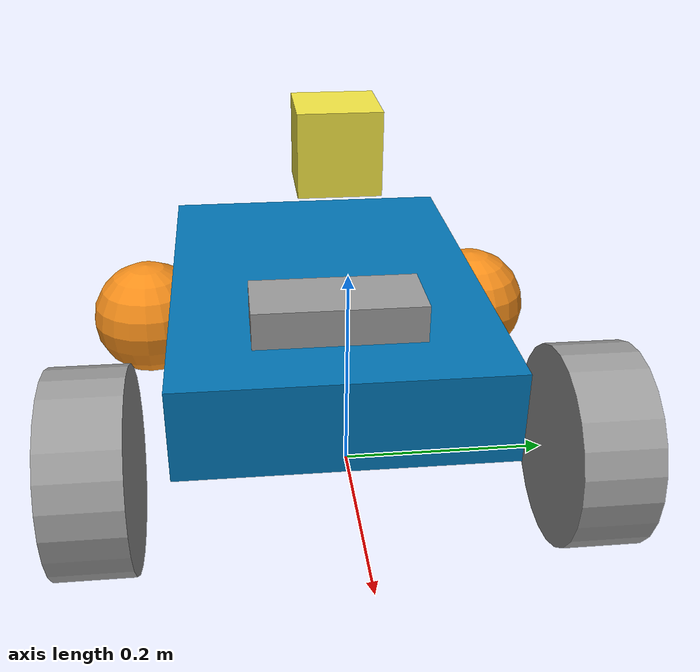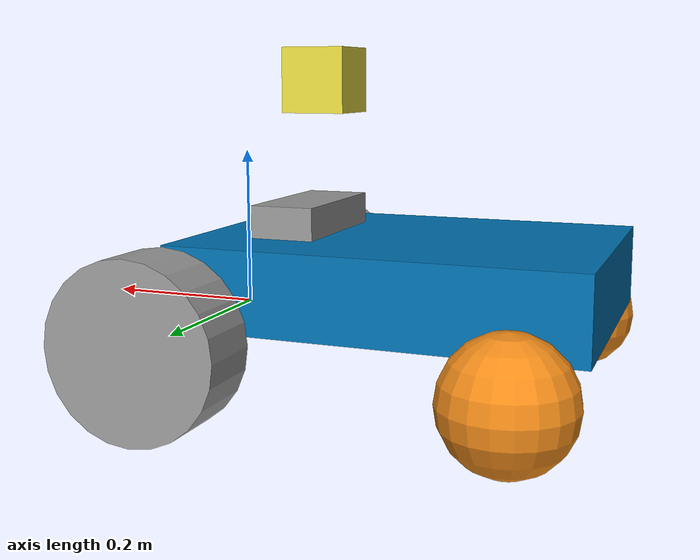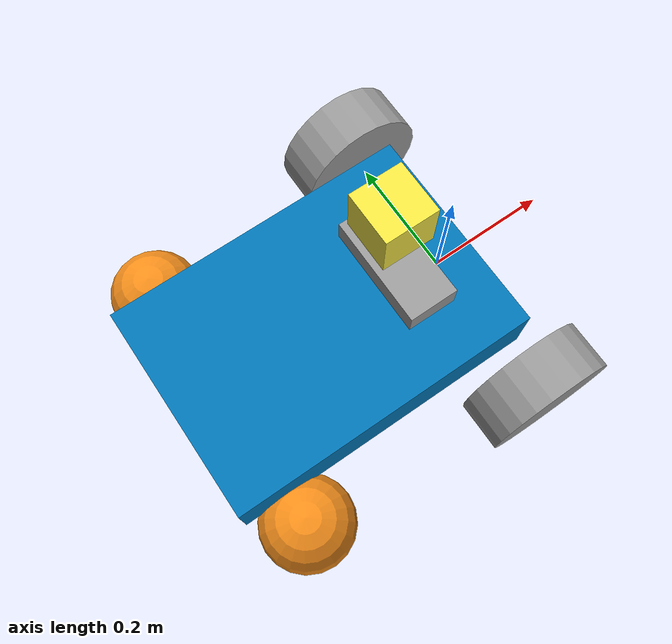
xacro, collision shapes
<?xml version="1.0" encoding="UTF-8"?>
<robot name="base_fox_cart" xmlns:xacro="http://ros.org/wiki/xacro">
	<!--URDF uses SI Units: meters, radians and kilograms-->

	<!-- common constants -->
	<!--xacro:include filename="$(find fox_description)/urdf/common_properties.xacro"/-->

	<xacro:include filename="$(find fox_description)/urdf/wheel.urdf.xacro"/>
	<xacro:include filename="$(find fox_description)/urdf/caster.urdf.xacro"/>
	<xacro:include filename="$(find fox_description)/urdf/camera.urdf.xacro"/>
	<xacro:include filename="$(find fox_description)/urdf/laser.urdf.xacro"/>

	<link name="base_link">
        <visual>
            <origin xyz="0 0 0" rpy="0 0 0"/>
            <geometry>
                <mesh filename="package://fox_description/meshes/fox_cart.dae"
					scale="0.001 0.001 0.001"/>
			</geometry>
		<material name="dark"/>
        </visual>
	<collision>
            <origin xyz="-0.225 0 0.05" rpy="0 0 0"/>
            <geometry>
                <box size="0.50 0.35 0.10"/>
            </geometry>
	</collision>
	<inertial>
                <origin xyz="-0.225 0 0" rpy="0 0 0"/>
                <mass value="20"/> <!-- in kg -->
			<!-- M=20kg, x=0.5m, y=0.34m, z=0.1m-->
                <inertia ixx="0.2093333" ixy="0.0" ixz="0.0" iyy="0.4333333" iyz="0.0" izz="0.6093333"/>
        </inertial>
        </link>

	<!-- front_wheel macros -->
    <xacro:front_wheel alignment="left" x_="0" y_="0.25" z_="0" rx_="0" ry_="0" rz_="${pi}" off_="-0.12" f_="0.01" s_="1.0"  >
	</xacro:front_wheel>

    <xacro:front_wheel alignment="right" x_="0" y_="-0.25" z_="0" rx_="0" ry_="0.0" rz_="0" off_="0.12" f_="0.01" s_="1.0" >
	</xacro:front_wheel>

	<!-- Caster macros -->
    <xacro:caster alignment="left" x_="-0.4" y_="-0.22" z_="-0.03" >
	</xacro:caster>

    <xacro:caster alignment="right" x_="-0.4" y_="0.22" z_="-0.03" >
	</xacro:caster>

	<!-- ar_tag macros -->

	<!-- Gazebo simulation plugins -->
	<xacro:include filename="$(find fox_description)/urdf/base_fox_cart.gazebo.xacro"/>

</robot>

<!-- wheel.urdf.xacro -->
<robot xmlns:xacro="http://ros.org/wiki/xacro" name="front_wheel">
	<xacro:macro name="front_wheel" params="alignment x_ y_ z_ rx_ ry_ rz_ off_ f_ s_ ">

		<joint name="wheel_${alignment}_joint" type="continuous">
			<parent link="base_link"/>
			<child link="wheel_${alignment}_link"/>
			<dynamics damping="0.0005" friction="0.00" /> <!-- can be set to the right values -->
			<!--limit upper="0.001"/--> <!-- set to correct values -->
			<axis xyz="0 -1 0"/>
			<origin xyz= "${x_} ${y_} ${z_}"/>
		</joint>

		<link name="wheel_${alignment}_link">
			<visual>
				<origin xyz="0 0 0" rpy="0 0 ${rz_}"/>
				<geometry>
					<mesh 	filename="package://fox_description/meshes/wheel_fox.stl"
							scale="0.001 0.001 0.001"/>
				</geometry>
			</visual>
			<inertial>
				<origin xyz="0 0 0"/>
				<mass value="0.5" />
				<inertia ixx="0.000986875" ixy="0.0" ixz="0.0" iyy="0.000145375" iyz="0.0" izz="0.000986875" />
			</inertial>
			<collision>
				<origin xyz="0 0 0" rpy="${pi/2} 0 0"/>
				<geometry>
					<cylinder length="0.08" radius="0.105"/>
				</geometry>
			</collision>
		</link>

		<gazebo reference="wheel_${alignment}_link">
			<kp value="50000000.0" />
			<kd value="0.2" />
			<minDepth>0.001</minDepth>
			<maxVel>0.01</maxVel>
			<mu1 value="10.0"/>
			<mu2 value="10.0"/>
			<fdir1>1 0 0</fdir1>
1			<material>Gazebo/Grey</material>
		</gazebo>
	</xacro:macro>
</robot>

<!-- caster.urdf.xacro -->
<robot xmlns:xacro="http://ros.org/wiki/xacro" name="caster_wheel">
	<xacro:macro name="caster" params="alignment x_ y_ z_">

		<joint name="caster_${alignment}_joint" type="fixed">
			<parent link="base_link"/>
			<child link="caster_${alignment}_link"/>
			<axis xyz="0 1 0"/>
			<dynamics damping="0.0005" friction="0.00" />
			<origin xyz= "${x_} ${y_} ${z_}"/>
		</joint>

		<link name="caster_${alignment}_link">

			<inertial>
				<origin xyz="0 0 0"/>
				<mass value="0.001" />
				<!-- M=3kg, h=0.08m, r=0.105m-->
				<inertia ixx="0.000001" ixy="0.0" ixz="0.0" iyy= "0.000001" iyz="0.0" izz="0.000001" />
			</inertial>

			<collision>
				<origin xyz="0 0 0" rpy="0 0 0"/>
				<geometry>
					<sphere radius="0.075"/>
				</geometry>
			</collision>
		</link>

		<gazebo reference="caster_${alignment}_link">
			<kp value="50000000.0" />
			<kd value="0.2" />
			<mu1 value="0.01"/>
			<mu2 value="0.01"/>
			<minDepth>0.001</minDepth>
			<maxVel>0.01</maxVel>
			<fdir1>1 0 0</fdir1>
			<material>Gazebo/Orange</material>
		</gazebo>
	</xacro:macro>
</robot>

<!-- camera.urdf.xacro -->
<robot>

  <joint name="astra_joint" type="fixed">
    <origin xyz="-0.09 0 0.11" rpy="0 0 ${pi}"/>
    <parent link="base_link"/>
    <child link="camera_link"/>
  </joint>

  <link name="camera_link">

    <visual>
      <origin xyz="0 0 0" rpy="${pi/2} 0 ${pi/2}"/>
      <geometry>
        <mesh filename="package://fox_description/meshes/sensors/astra.dae" scale="0.001 0.001 0.001" />
      </geometry>
    </visual>

<!-- might be a bit small... -->
    <inertial>
      <mass value="1e-5" />
      <origin xyz="0 0 0" rpy="0 0 0"/>
      <inertia ixx="0" ixy="0" ixz="0" iyy="0" iyz="0" izz="0" />
    </inertial>

    <collision>
      <origin xyz="0 0 0" rpy="0 0 0"/>
      <geometry>0
        <box size="0.08 0.18 0.06"/>
      </geometry>
    </collision>

  </link>

  <joint name="camera_optical_joint" type="fixed">
    <origin xyz="0 0 0" rpy="${-pi/2} 0 ${-pi/2}"/>
    <parent link="camera_link"/>
    <child link="camera_rgb_frame"/>
  </joint>

  <link name="camera_rgb_frame">
  </link>

  <joint name="camera_depth_joint" type="fixed">
    <origin xyz="0 0 0" rpy="${-pi/2} 0 ${-pi/2}"/>
    <parent link="camera_link"/>
    <child link="camera_depth_frame"/>
  </joint>

  <link name="camera_depth_frame">
  </link>

  <gazebo reference="camera_link">
    <sensor type="depth" name="openni_camera_camera">
      <always_on>1</always_on>
      <visualize>true</visualize>
      <camera>
        <horizontal_fov>1.047</horizontal_fov>
        <image>
          <width>640</width>
          <height>480</height>
          <format>R8G8B8</format>
        </image>
        <depth_camera>

        </depth_camera>
        <clip>
          <near>0.1</near>
          <far>100</far>
        </clip>
      </camera>
      <plugin name="kinect_controller" filename="libgazebo_ros_openni_kinect.so">
        <alwaysOn>true</alwaysOn>
        <updateRate>10.0</updateRate>
        <cameraName>camera</cameraName>
        <frameName>camera_depth_frame</frameName>
        <imageTopicName>rgb/image_raw</imageTopicName>
        <depthImageTopicName>depth/image_raw</depthImageTopicName>
        <pointCloudTopicName>depth/points</pointCloudTopicName>
        <cameraInfoTopicName>rgb/camera_info</cameraInfoTopicName>
        <depthImageCameraInfoTopicName>depth/camera_info</depthImageCameraInfoTopicName>
        <pointCloudCutoff>0.4</pointCloudCutoff>
        <hackBaseline>0.07</hackBaseline>
        <distortionK1>0.0</distortionK1>
        <distortionK2>0.0</distortionK2>
        <distortionK3>0.0</distortionK3>
        <distortionT1>0.0</distortionT1>
        <distortionT2>0.0</distortionT2>
        <CxPrime>0.0</CxPrime>
        <Cx>0.0</Cx>
        <Cy>0.0</Cy>
        <focalLength>0.0</focalLength>
      </plugin>
    </sensor>
    <material>Gazebo/Grey</material>
  </gazebo>

</robot>

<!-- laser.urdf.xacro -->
<robot>

  <joint name="rplidar_joint" type="fixed">
    <origin xyz="-0.11 0 0.25" rpy="0 0 3.14"/>
    <parent link="base_link"/>
    <child link="laser"/>
  </joint>

  <link name="laser">

    <visual>
      <origin xyz="0 0 -0.15" rpy="0 0 0"/>
      <geometry>
        <mesh filename="package://fox_description/meshes/lidar.dae" scale="0.001 0.001 0.001" />
      </geometry>
    </visual>

    <collision>
      <origin xyz="0 0 0.04" rpy="0 0 0"/>
      <geometry>
        <box size="0.08 0.08 0.08"/>
      </geometry>
    </collision>

    <inertial>
      <mass value="1e-5" />
      <origin xyz="0 0 0.058" rpy="1.5707 0 4.71"/>
      <inertia ixx="0" ixy="0" ixz="0" iyy="0" iyz="0" izz="0" />
    </inertial>

  </link>

  <!-- If you cant't use your GPU comment RpLidar using GPU and uncomment RpLidar using CPU
    gazebo plugin. -->

  <!-- RpLidar using GPU -->

  <!-- RpLidar using CPU -->
   <gazebo reference="laser">
    <sensor type="ray" name="head_rplidar_sensor">
      <pose>0 0 0.06 0 0 0</pose>
      <visualize>false</visualize>
      <update_rate>40</update_rate>
      <ray>
        <scan>
          <horizontal>
            <samples>720</samples>
            <resolution>1</resolution>
            <min_angle>-3.14159265</min_angle>
            <max_angle>3.14159265</max_angle>
          </horizontal>
        </scan>
        <range>
          <min>0.2</min>
          <max>30.0</max>
          <resolution>0.01</resolution>
        </range>
        <noise>
          <type>gaussian</type>
          <mean>0.0</mean>
          <stddev>0.01</stddev>
        </noise>
      </ray>
      <plugin name="gazebo_ros_head_rplidar_controller" filename="libgazebo_ros_laser.so">
        <topicName>scan</topicName>
        <frameName>laser</frameName>
      </plugin>
    </sensor>
  </gazebo>

</robot>
